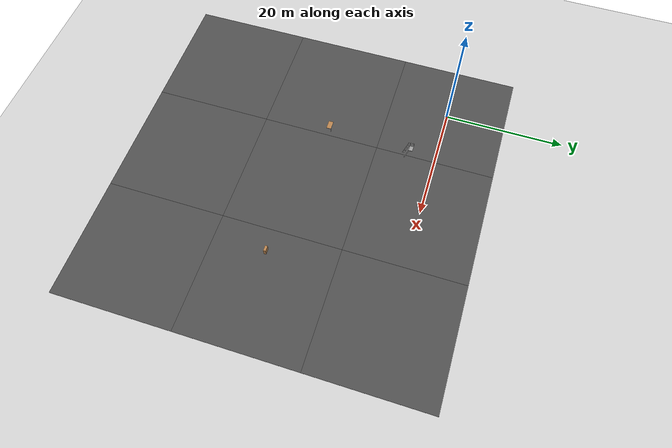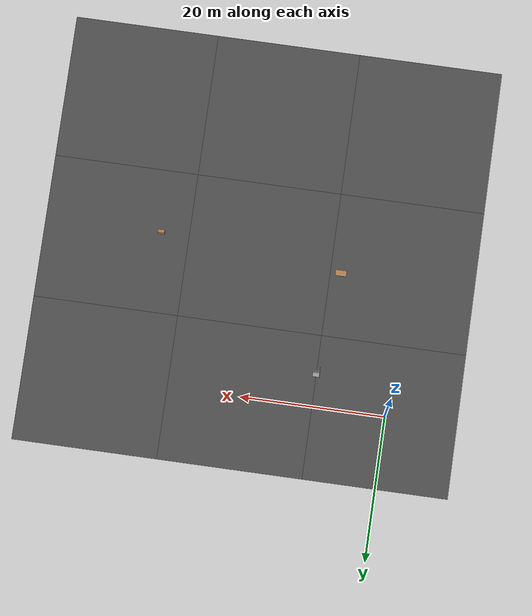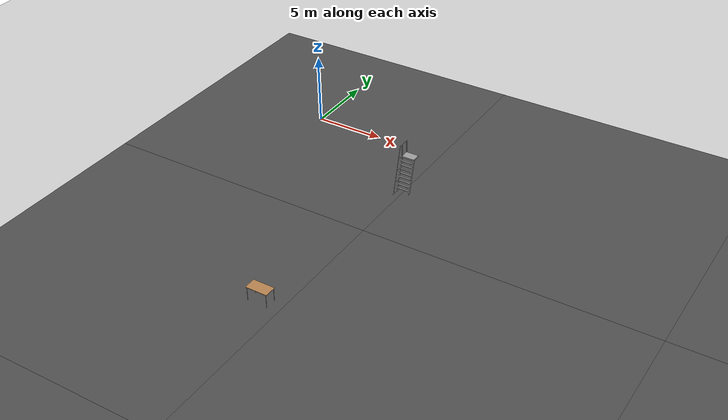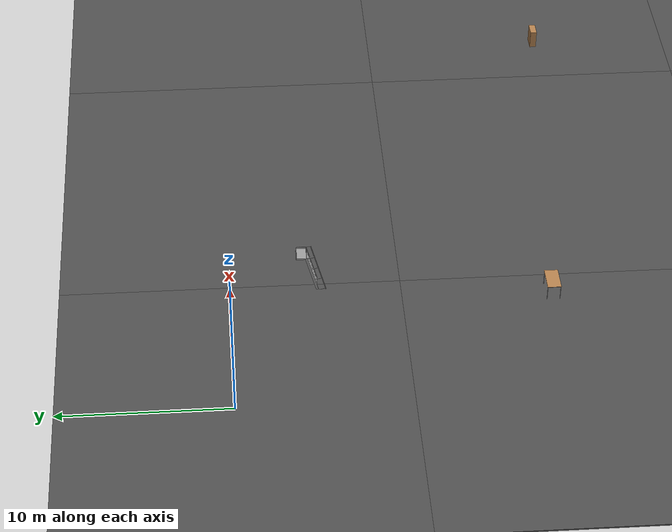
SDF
<sdf version="1.6">
 <world name="default">
  <light name="sun" type="directional">
   <pose>0 0 10 0 -0 0</pose>
   <diffuse>0.8 0.8 0.8 1</diffuse>
   <specular>0.2 0.2 0.2 1</specular>
   <attenuation>
    <range>1000</range>
    <constant>0.9</constant>
    <linear>0.01</linear>
    <quadratic>0.001</quadratic>
   </attenuation>
   <direction>-0.5 0.1 -0.9</direction>
  </light>
  <model name="ground_plane">
   <static>1</static>
   <link name="link">
    <collision name="collision">
     <geometry><plane><normal>0 0 1</normal><size>100 100</size></plane></geometry>
     <surface><friction><ode><mu>100</mu><mu2>50</mu2></ode></friction></surface>
    </collision>
    <visual name="visual">
     <cast_shadows>0</cast_shadows>
     <geometry><plane><normal>0 0 1</normal><size>100 100</size></plane></geometry>
     <material>
      <script><uri>file://media/materials/scripts/gazebo.material</uri><name>Gazebo/Grey</name></script>
     </material>
    </visual>
   </link>
  </model>
  <model name="asphalt_plane">
   <static>1</static>
   <link name="link">
    <collision name="collision"><geometry><box><size>20 20 0.1</size></box></geometry></collision>
    <visual name="visual">
     <cast_shadows>0</cast_shadows>
     <geometry><box><size>20 20 0.1</size></box></geometry>
     <material>
      <script>
       <uri>model://asphalt_plane/materials/scripts</uri>
       <uri>model://asphalt_plane/materials/textures</uri>
       <name>vrc/asphalt</name>
      </script>
     </material>
    </visual>
   </link>
  </model>
  <physics name="default_physics" default="0" type="ode">
   <ode>
    <solver>
     <type>quick</type>
     <iters>10</iters>
     <sor>1.3</sor>
     <use_dynamic_moi_rescaling>0</use_dynamic_moi_rescaling>
    </solver>
    <constraints>
     <cfm>0</cfm>
     <erp>0.2</erp>
     <contact_max_correcting_vel>100</contact_max_correcting_vel>
     <contact_surface_layer>0.001</contact_surface_layer>
    </constraints>
   </ode>
   <max_step_size>0.004</max_step_size>
   <real_time_factor>1</real_time_factor>
   <real_time_update_rate>250</real_time_update_rate>
  </physics>
  <gravity>0 0 -9.8066</gravity>
  <magnetic_field>6e-06 2.3e-05 -4.2e-05</magnetic_field>
  <atmosphere type="adiabatic"/>
  <scene><ambient>0.4 0.4 0.4 1</ambient><background>0.7 0.7 0.7 1</background><shadows>1</shadows></scene>
  <spherical_coordinates>
   <surface_model>EARTH_WGS84</surface_model>
   <latitude_deg>0</latitude_deg>
   <longitude_deg>0</longitude_deg>
   <elevation>0</elevation>
   <heading_deg>0</heading_deg>
  </spherical_coordinates>
  <model name="asphalt_plane_clone">
   <static>1</static>
   <link name="link">
    <collision name="collision"><geometry><box><size>20 20 0.1</size></box></geometry></collision>
    <visual name="visual">
     <cast_shadows>0</cast_shadows>
     <geometry><box><size>20 20 0.1</size></box></geometry>
     <material>
      <script>
       <uri>model://asphalt_plane/materials/scripts</uri>
       <uri>model://asphalt_plane/materials/textures</uri>
       <name>vrc/asphalt</name>
      </script>
     </material>
    </visual>
   </link>
   <pose>20 0 0 0 -0 0</pose>
  </model>
  <model name="asphalt_plane_clone_0">
   <static>1</static>
   <link name="link">
    <collision name="collision"><geometry><box><size>20 20 0.1</size></box></geometry></collision>
    <visual name="visual">
     <cast_shadows>0</cast_shadows>
     <geometry><box><size>20 20 0.1</size></box></geometry>
     <material>
      <script>
       <uri>model://asphalt_plane/materials/scripts</uri>
       <uri>model://asphalt_plane/materials/textures</uri>
       <name>vrc/asphalt</name>
      </script>
     </material>
    </visual>
   </link>
   <pose>0 -20 0 0 -0 0</pose>
  </model>
  <model name="asphalt_plane_clone_0_clone">
   <static>1</static>
   <link name="link">
    <collision name="collision"><geometry><box><size>20 20 0.1</size></box></geometry></collision>
    <visual name="visual">
     <cast_shadows>0</cast_shadows>
     <geometry><box><size>20 20 0.1</size></box></geometry>
     <material>
      <script>
       <uri>model://asphalt_plane/materials/scripts</uri>
       <uri>model://asphalt_plane/materials/textures</uri>
       <name>vrc/asphalt</name>
      </script>
     </material>
    </visual>
   </link>
   <pose>20 -20 0 0 -0 0</pose>
  </model>
  <model name="asphalt_plane_clone_0_clone_clone">
   <static>1</static>
   <link name="link">
    <collision name="collision"><geometry><box><size>20 20 0.1</size></box></geometry></collision>
    <visual name="visual">
     <cast_shadows>0</cast_shadows>
     <geometry><box><size>20 20 0.1</size></box></geometry>
     <material>
      <script>
       <uri>model://asphalt_plane/materials/scripts</uri>
       <uri>model://asphalt_plane/materials/textures</uri>
       <name>vrc/asphalt</name>
      </script>
     </material>
    </visual>
   </link>
   <pose>20 -40 0 0 -0 0</pose>
  </model>
  <model name="asphalt_plane_clone_0_clone_clone_0">
   <static>1</static>
   <link name="link">
    <collision name="collision"><geometry><box><size>20 20 0.1</size></box></geometry></collision>
    <visual name="visual">
     <cast_shadows>0</cast_shadows>
     <geometry><box><size>20 20 0.1</size></box></geometry>
     <material>
      <script>
       <uri>model://asphalt_plane/materials/scripts</uri>
       <uri>model://asphalt_plane/materials/textures</uri>
       <name>vrc/asphalt</name>
      </script>
     </material>
    </visual>
   </link>
   <pose>0 -40 0 0 -0 0</pose>
  </model>
  <model name="asphalt_plane_clone_0_clone_clone_1">
   <static>1</static>
   <link name="link">
    <collision name="collision"><geometry><box><size>20 20 0.1</size></box></geometry></collision>
    <visual name="visual">
     <cast_shadows>0</cast_shadows>
     <geometry><box><size>20 20 0.1</size></box></geometry>
     <material>
      <script>
       <uri>model://asphalt_plane/materials/scripts</uri>
       <uri>model://asphalt_plane/materials/textures</uri>
       <name>vrc/asphalt</name>
      </script>
     </material>
    </visual>
   </link>
   <pose>40 0 0 0 -0 0</pose>
  </model>
  <model name="asphalt_plane_clone_0_clone_clone_2">
   <static>1</static>
   <link name="link">
    <collision name="collision"><geometry><box><size>20 20 0.1</size></box></geometry></collision>
    <visual name="visual">
     <cast_shadows>0</cast_shadows>
     <geometry><box><size>20 20 0.1</size></box></geometry>
     <material>
      <script>
       <uri>model://asphalt_plane/materials/scripts</uri>
       <uri>model://asphalt_plane/materials/textures</uri>
       <name>vrc/asphalt</name>
      </script>
     </material>
    </visual>
   </link>
   <pose>40 -20 0 0 -0 0</pose>
  </model>
  <model name="asphalt_plane_clone_0_clone_clone_3">
   <static>1</static>
   <link name="link">
    <collision name="collision"><geometry><box><size>20 20 0.1</size></box></geometry></collision>
    <visual name="visual">
     <cast_shadows>0</cast_shadows>
     <geometry><box><size>20 20 0.1</size></box></geometry>
     <material>
      <script>
       <uri>model://asphalt_plane/materials/scripts</uri>
       <uri>model://asphalt_plane/materials/textures</uri>
       <name>vrc/asphalt</name>
      </script>
     </material>
    </visual>
   </link>
   <pose>40 -40 0 0 -0 0</pose>
  </model>
  <model name="ladder_75deg_1rails">
   <static>1</static>
   <link name="step0">
    <pose>0 0.071453 0.266667 0 -0 0</pose>
    <inertial>
     <mass>9.75482</mass>
     <inertia>
      <ixx>0.00957124</ixx>
      <iyy>0.65963</iyy>
      <izz>0.666842</izz>
      <ixy>0</ixy>
      <ixz>0</ixz>
      <iyz>0</iyz>
     </inertia>
    </inertial>
    <collision name="collision"><geometry><box><size>0.9 0.1016 0.0381</size></box></geometry></collision>
    <visual name="visual">
     <geometry><box><size>0.9 0.1016 0.0381</size></box></geometry>
     <material>
      <script><uri>file://media/materials/scripts/gazebo.material</uri><name>Gazebo/Grey</name></script>
     </material>
    </visual>
   </link>
   <link name="step1">
    <pose>0 0.142906 0.533333 0 -0 0</pose>
    <inertial>
     <mass>9.75482</mass>
     <inertia>
      <ixx>0.00957124</ixx>
      <iyy>0.65963</iyy>
      <izz>0.666842</izz>
      <ixy>0</ixy>
      <ixz>0</ixz>
      <iyz>0</iyz>
     </inertia>
    </inertial>
    <collision name="collision"><geometry><box><size>0.9 0.1016 0.0381</size></box></geometry></collision>
    <visual name="visual">
     <geometry><box><size>0.9 0.1016 0.0381</size></box></geometry>
     <material>
      <script><uri>file://media/materials/scripts/gazebo.material</uri><name>Gazebo/Grey</name></script>
     </material>
    </visual>
   </link>
   <link name="step2">
    <pose>0 0.214359 0.8 0 -0 0</pose>
    <inertial>
     <mass>9.75482</mass>
     <inertia>
      <ixx>0.00957124</ixx>
      <iyy>0.65963</iyy>
      <izz>0.666842</izz>
      <ixy>0</ixy>
      <ixz>0</ixz>
      <iyz>0</iyz>
     </inertia>
    </inertial>
    <collision name="collision"><geometry><box><size>0.9 0.1016 0.0381</size></box></geometry></collision>
    <visual name="visual">
     <geometry><box><size>0.9 0.1016 0.0381</size></box></geometry>
     <material>
      <script><uri>file://media/materials/scripts/gazebo.material</uri><name>Gazebo/Grey</name></script>
     </material>
    </visual>
   </link>
   <link name="step3">
    <pose>0 0.285812 1.06667 0 -0 0</pose>
    <inertial>
     <mass>9.75482</mass>
     <inertia>
      <ixx>0.00957124</ixx>
      <iyy>0.65963</iyy>
      <izz>0.666842</izz>
      <ixy>0</ixy>
      <ixz>0</ixz>
      <iyz>0</iyz>
     </inertia>
    </inertial>
    <collision name="collision"><geometry><box><size>0.9 0.1016 0.0381</size></box></geometry></collision>
    <visual name="visual">
     <geometry><box><size>0.9 0.1016 0.0381</size></box></geometry>
     <material>
      <script><uri>file://media/materials/scripts/gazebo.material</uri><name>Gazebo/Grey</name></script>
     </material>
    </visual>
   </link>
   <link name="step4">
    <pose>0 0.357266 1.33333 0 -0 0</pose>
    <inertial>
     <mass>9.75482</mass>
     <inertia>
      <ixx>0.00957124</ixx>
      <iyy>0.65963</iyy>
      <izz>0.666842</izz>
      <ixy>0</ixy>
      <ixz>0</ixz>
      <iyz>0</iyz>
     </inertia>
    </inertial>
    <collision name="collision"><geometry><box><size>0.9 0.1016 0.0381</size></box></geometry></collision>
    <visual name="visual">
     <geometry><box><size>0.9 0.1016 0.0381</size></box></geometry>
     <material>
      <script><uri>file://media/materials/scripts/gazebo.material</uri><name>Gazebo/Grey</name></script>
     </material>
    </visual>
   </link>
   <link name="step5">
    <pose>0 0.428719 1.6 0 -0 0</pose>
    <inertial>
     <mass>9.75482</mass>
     <inertia>
      <ixx>0.00957124</ixx>
      <iyy>0.65963</iyy>
      <izz>0.666842</izz>
      <ixy>0</ixy>
      <ixz>0</ixz>
      <iyz>0</iyz>
     </inertia>
    </inertial>
    <collision name="collision"><geometry><box><size>0.9 0.1016 0.0381</size></box></geometry></collision>
    <visual name="visual">
     <geometry><box><size>0.9 0.1016 0.0381</size></box></geometry>
     <material>
      <script><uri>file://media/materials/scripts/gazebo.material</uri><name>Gazebo/Grey</name></script>
     </material>
    </visual>
   </link>
   <link name="step6">
    <pose>0 0.500172 1.86667 0 -0 0</pose>
    <inertial>
     <mass>9.75482</mass>
     <inertia>
      <ixx>0.00957124</ixx>
      <iyy>0.65963</iyy>
      <izz>0.666842</izz>
      <ixy>0</ixy>
      <ixz>0</ixz>
      <iyz>0</iyz>
     </inertia>
    </inertial>
    <collision name="collision"><geometry><box><size>0.9 0.1016 0.0381</size></box></geometry></collision>
    <visual name="visual">
     <geometry><box><size>0.9 0.1016 0.0381</size></box></geometry>
     <material>
      <script><uri>file://media/materials/scripts/gazebo.material</uri><name>Gazebo/Grey</name></script>
     </material>
    </visual>
   </link>
   <link name="step7">
    <pose>0 0.571625 2.13333 0 -0 0</pose>
    <inertial>
     <mass>9.75482</mass>
     <inertia>
      <ixx>0.00957124</ixx>
      <iyy>0.65963</iyy>
      <izz>0.666842</izz>
      <ixy>0</ixy>
      <ixz>0</ixz>
      <iyz>0</iyz>
     </inertia>
    </inertial>
    <collision name="collision"><geometry><box><size>0.9 0.1016 0.0381</size></box></geometry></collision>
    <visual name="visual">
     <geometry><box><size>0.9 0.1016 0.0381</size></box></geometry>
     <material>
      <script><uri>file://media/materials/scripts/gazebo.material</uri><name>Gazebo/Grey</name></script>
     </material>
    </visual>
   </link>
   <link name="landing">
    <pose>0 0.943078 2.4 0 -0 0</pose>
    <inertial>
     <mass>57.6072</mass>
     <inertia><ixx>1.73518</ixx><iyy>3.89545</iyy><izz>5.6167</izz><ixy>0</ixy><ixz>0</ixz><iyz>0</iyz></inertia>
    </inertial>
    <collision name="collision"><geometry><box><size>0.9 0.6 0.1016</size></box></geometry></collision>
    <visual name="visual">
     <geometry><box><size>0.9 0.6 0.1016</size></box></geometry>
     <material>
      <script><uri>file://media/materials/scripts/gazebo.material</uri><name>Gazebo/Grey</name></script>
     </material>
    </visual>
   </link>
   <link name="left_side_wall">
    <pose>-0.45 0.321539 1.2 1.309 -0 0</pose>
    <collision name="collision"><geometry><box><size>0.0508 2.56466 0.13</size></box></geometry></collision>
    <visual name="visual">
     <geometry><box><size>0.0508 2.56466 0.13</size></box></geometry>
     <material>
      <script><uri>file://media/materials/scripts/gazebo.material</uri><name>Gazebo/Grey</name></script>
     </material>
    </visual>
   </link>
   <link name="right_side_wall">
    <pose>0.45 0.321539 1.2 1.309 -0 0</pose>
    <collision name="collision"><geometry><box><size>0.0508 2.56466 0.13</size></box></geometry></collision>
    <visual name="visual">
     <geometry><box><size>0.0508 2.56466 0.13</size></box></geometry>
     <material>
      <script><uri>file://media/materials/scripts/gazebo.material</uri><name>Gazebo/Grey</name></script>
     </material>
    </visual>
   </link>
   <link name="left_railing_long">
    <pose>-0.45 -0.053461 1.66651 -0.261799 0 0</pose>
    <collision name="collision">
     <geometry><cylinder><radius>0.02413</radius><length>3.51529</length></cylinder></geometry>
    </collision>
    <visual name="visual">
     <geometry><cylinder><radius>0.02413</radius><length>3.51529</length></cylinder></geometry>
     <material>
      <script><uri>file://media/materials/scripts/gazebo.material</uri><name>Gazebo/Grey</name></script>
     </material>
    </visual>
   </link>
   <link name="left_railing_upright0">
    <pose>-0.45 -0.210089 0.056293 1.309 -0 0</pose>
    <collision name="collision">
     <geometry><cylinder><radius>0.02413</radius><length>0.482963</length></cylinder></geometry>
    </collision>
    <visual name="visual">
     <geometry><cylinder><radius>0.02413</radius><length>0.482963</length></cylinder></geometry>
     <material>
      <script><uri>file://media/materials/scripts/gazebo.material</uri><name>Gazebo/Grey</name></script>
     </material>
    </visual>
   </link>
   <link name="left_railing_upright1">
    <pose>-0.45 0.00427 0.856293 1.309 -0 0</pose>
    <collision name="collision">
     <geometry><cylinder><radius>0.02413</radius><length>0.482963</length></cylinder></geometry>
    </collision>
    <visual name="visual">
     <geometry><cylinder><radius>0.02413</radius><length>0.482963</length></cylinder></geometry>
     <material>
      <script><uri>file://media/materials/scripts/gazebo.material</uri><name>Gazebo/Grey</name></script>
     </material>
    </visual>
   </link>
   <link name="left_railing_upright2">
    <pose>-0.45 0.21863 1.65629 1.309 -0 0</pose>
    <collision name="collision">
     <geometry><cylinder><radius>0.02413</radius><length>0.482963</length></cylinder></geometry>
    </collision>
    <visual name="visual">
     <geometry><cylinder><radius>0.02413</radius><length>0.482963</length></cylinder></geometry>
     <material>
      <script><uri>file://media/materials/scripts/gazebo.material</uri><name>Gazebo/Grey</name></script>
     </material>
    </visual>
   </link>
   <link name="left_railing_upright3">
    <pose>-0.45 0.432989 2.45629 1.309 -0 0</pose>
    <collision name="collision">
     <geometry><cylinder><radius>0.02413</radius><length>0.482963</length></cylinder></geometry>
    </collision>
    <visual name="visual">
     <geometry><cylinder><radius>0.02413</radius><length>0.482963</length></cylinder></geometry>
     <material>
      <script><uri>file://media/materials/scripts/gazebo.material</uri><name>Gazebo/Grey</name></script>
     </material>
    </visual>
   </link>
   <link name="left_railing_landing_top">
    <pose>-0.45 0.818078 3.35714 1.5708 -0 0</pose>
    <collision name="collision">
     <geometry><cylinder><radius>0.02413</radius><length>0.87413</length></cylinder></geometry>
    </collision>
    <visual name="visual">
     <geometry><cylinder><radius>0.02413</radius><length>0.87413</length></cylinder></geometry>
     <material>
      <script><uri>file://media/materials/scripts/gazebo.material</uri><name>Gazebo/Grey</name></script>
     </material>
    </visual>
   </link>
   <link name="left_railing_landing_upright_0">
    <pose>-0.45 0.643078 2.86651 0 -0 0</pose>
    <collision name="collision">
     <geometry><cylinder><radius>0.02413</radius><length>0.933013</length></cylinder></geometry>
    </collision>
    <visual name="visual">
     <geometry><cylinder><radius>0.02413</radius><length>0.933013</length></cylinder></geometry>
     <material>
      <script><uri>file://media/materials/scripts/gazebo.material</uri><name>Gazebo/Grey</name></script>
     </material>
    </visual>
   </link>
   <link name="left_railing_landing_upright_1">
    <pose>-0.45 1.24308 2.86651 0 -0 0</pose>
    <collision name="collision">
     <geometry><cylinder><radius>0.02413</radius><length>0.933013</length></cylinder></geometry>
    </collision>
    <visual name="visual">
     <geometry><cylinder><radius>0.02413</radius><length>0.933013</length></cylinder></geometry>
     <material>
      <script><uri>file://media/materials/scripts/gazebo.material</uri><name>Gazebo/Grey</name></script>
     </material>
    </visual>
   </link>
   <pose>10.0222 -5.12715 0 0 -0 0</pose>
  </model>
  <model name="table">
   <static>1</static>
   <link name="link">
    <collision name="surface">
     <pose>0 0 1 0 -0 0</pose>
     <geometry><box><size>1.5 0.8 0.03</size></box></geometry>
     <surface><friction><ode><mu>0.6</mu><mu2>0.6</mu2></ode></friction></surface>
    </collision>
    <visual name="visual1">
     <pose>0 0 1 0 -0 0</pose>
     <geometry><box><size>1.5 0.8 0.03</size></box></geometry>
     <material>
      <script><uri>file://media/materials/scripts/gazebo.material</uri><name>Gazebo/Wood</name></script>
     </material>
    </visual>
    <collision name="front_left_leg">
     <pose>0.68 0.38 0.5 0 -0 0</pose>
     <geometry><cylinder><radius>0.02</radius><length>1</length></cylinder></geometry>
    </collision>
    <visual name="front_left_leg">
     <pose>0.68 0.38 0.5 0 -0 0</pose>
     <geometry><cylinder><radius>0.02</radius><length>1</length></cylinder></geometry>
     <material>
      <script><uri>file://media/materials/scripts/gazebo.material</uri><name>Gazebo/Grey</name></script>
     </material>
    </visual>
    <collision name="front_right_leg">
     <pose>0.68 -0.38 0.5 0 -0 0</pose>
     <geometry><cylinder><radius>0.02</radius><length>1</length></cylinder></geometry>
    </collision>
    <visual name="front_right_leg">
     <pose>0.68 -0.38 0.5 0 -0 0</pose>
     <geometry><cylinder><radius>0.02</radius><length>1</length></cylinder></geometry>
     <material>
      <script><uri>file://media/materials/scripts/gazebo.material</uri><name>Gazebo/Grey</name></script>
     </material>
    </visual>
    <collision name="back_right_leg">
     <pose>-0.68 -0.38 0.5 0 -0 0</pose>
     <geometry><cylinder><radius>0.02</radius><length>1</length></cylinder></geometry>
    </collision>
    <visual name="back_right_leg">
     <pose>-0.68 -0.38 0.5 0 -0 0</pose>
     <geometry><cylinder><radius>0.02</radius><length>1</length></cylinder></geometry>
     <material>
      <script><uri>file://media/materials/scripts/gazebo.material</uri><name>Gazebo/Grey</name></script>
     </material>
    </visual>
    <collision name="back_left_leg">
     <pose>-0.68 0.38 0.5 0 -0 0</pose>
     <geometry><cylinder><radius>0.02</radius><length>1</length></cylinder></geometry>
    </collision>
    <visual name="back_left_leg">
     <pose>-0.68 0.38 0.5 0 -0 0</pose>
     <geometry><cylinder><radius>0.02</radius><length>1</length></cylinder></geometry>
     <material>
      <script><uri>file://media/materials/scripts/gazebo.material</uri><name>Gazebo/Grey</name></script>
     </material>
    </visual>
   </link>
   <pose>8.51507 -18.8154 0 0 -0 0</pose>
  </model>
  <model name="bookshelf">
   <static>1</static>
   <link name="link">
    <inertial><mass>1</mass></inertial>
    <collision name="back">
     <pose>0 0.005 0.6 0 -0 0</pose>
     <geometry><box><size>0.9 0.01 1.2</size></box></geometry>
    </collision>
    <visual name="visual1">
     <pose>0 0.005 0.6 0 -0 0</pose>
     <geometry><box><size>0.9 0.01 1.2</size></box></geometry>
     <material>
      <script><uri>file://media/materials/scripts/gazebo.material</uri><name>Gazebo/Wood</name></script>
     </material>
    </visual>
    <collision name="left_side">
     <pose>0.45 -0.195 0.6 0 -0 0</pose>
     <geometry><box><size>0.02 0.4 1.2</size></box></geometry>
    </collision>
    <visual name="visual2">
     <pose>0.45 -0.195 0.6 0 -0 0</pose>
     <geometry><box><size>0.02 0.4 1.2</size></box></geometry>
     <material>
      <script><uri>file://media/materials/scripts/gazebo.material</uri><name>Gazebo/Wood</name></script>
     </material>
    </visual>
    <collision name="right_side">
     <pose>-0.45 -0.195 0.6 0 -0 0</pose>
     <geometry><box><size>0.02 0.4 1.2</size></box></geometry>
    </collision>
    <visual name="visual3">
     <pose>-0.45 -0.195 0.6 0 -0 0</pose>
     <geometry><box><size>0.02 0.4 1.2</size></box></geometry>
     <material>
      <script><uri>file://media/materials/scripts/gazebo.material</uri><name>Gazebo/Wood</name></script>
     </material>
    </visual>
    <collision name="bottom">
     <pose>0 -0.195 0.03 0 -0 0</pose>
     <geometry><box><size>0.88 0.4 0.06</size></box></geometry>
    </collision>
    <visual name="visual4">
     <pose>0 -0.195 0.03 0 -0 0</pose>
     <geometry><box><size>0.88 0.4 0.06</size></box></geometry>
     <material>
      <script><uri>file://media/materials/scripts/gazebo.material</uri><name>Gazebo/Wood</name></script>
     </material>
    </visual>
    <collision name="top">
     <pose>0 -0.195 1.19 0 -0 0</pose>
     <geometry><box><size>0.88 0.4 0.02</size></box></geometry>
    </collision>
    <visual name="visual5">
     <pose>0 -0.195 1.19 0 -0 0</pose>
     <geometry><box><size>0.88 0.4 0.02</size></box></geometry>
     <material>
      <script><uri>file://media/materials/scripts/gazebo.material</uri><name>Gazebo/Wood</name></script>
     </material>
    </visual>
    <collision name="low_shelf">
     <pose>0 -0.195 0.43 0 -0 0</pose>
     <geometry><box><size>0.88 0.4 0.02</size></box></geometry>
    </collision>
    <visual name="visual6">
     <pose>0 -0.195 0.43 0 -0 0</pose>
     <geometry><box><size>0.88 0.4 0.02</size></box></geometry>
     <material>
      <script><uri>file://media/materials/scripts/gazebo.material</uri><name>Gazebo/Wood</name></script>
     </material>
    </visual>
    <collision name="high_shelf">
     <pose>0 -0.195 0.8 0 -0 0</pose>
     <geometry><box><size>0.88 0.4 0.02</size></box></geometry>
    </collision>
    <visual name="visual7">
     <pose>0 -0.195 0.8 0 -0 0</pose>
     <geometry><box><size>0.88 0.4 0.02</size></box></geometry>
     <material>
      <script><uri>file://media/materials/scripts/gazebo.material</uri><name>Gazebo/Wood</name></script>
     </material>
    </visual>
   </link>
   <pose>33.8422 -21.0043 0 0 -0 0</pose>
  </model>
 </world>
</sdf>
